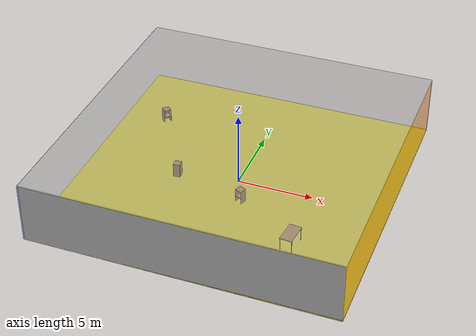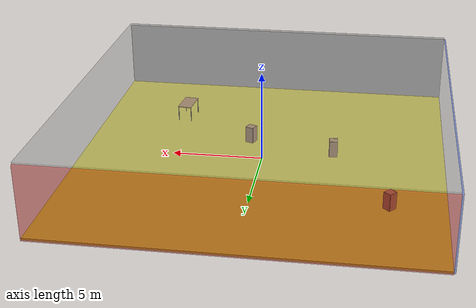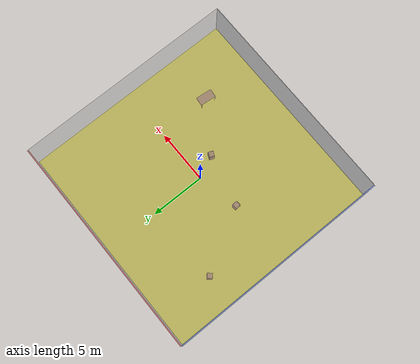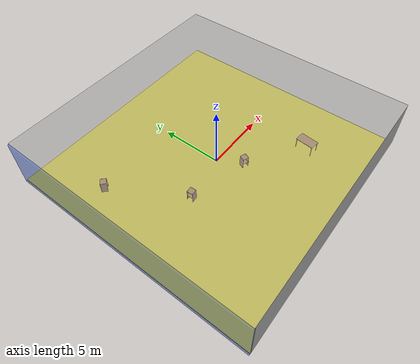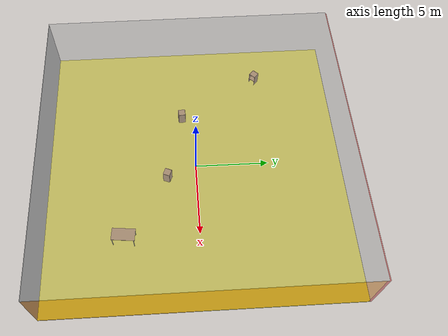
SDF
<sdf version="1.4">
 <world name="default">
  <physics type="ode">
   <max_step_size>0.001</max_step_size>
   <real_time_factor>1</real_time_factor>
   <real_time_update_rate>1000</real_time_update_rate>
   <gravity>0 0 -9.8</gravity>
  </physics>
  <scene><ambient>0.4 0.4 0.4 1</ambient><background>0.7 0.7 0.7 1</background><shadows>1</shadows></scene>
  <model name="Surrounding">
   <static>1</static>
   <link name="Ceiling">
    <collision name="Ceiling_Collision"><geometry><box><size>20 20 0.1</size></box></geometry></collision>
    <visual name="Ceiling_Visual">
     <geometry><box><size>20 20 0.1</size></box></geometry>
     <material>
      <script><uri>file://media/materials/scripts/gazebo.material</uri><name>Gazebo/GreyTransparent</name></script>
     </material>
    </visual>
    <pose>0 0 4.05 0 0 0</pose>
   </link>
   <link name="Wall_South">
    <collision name="Wall_South_Collision">
     <geometry><box><size>20 0 4</size></box></geometry>
     <pose>0 0 2 0 -0 0</pose>
    </collision>
    <visual name="Wall_South_Visual">
     <pose>0 0 2 0 -0 0</pose>
     <geometry><box><size>20 0 4</size></box></geometry>
     <material>
      <script><uri>file://media/materials/scripts/gazebo.material</uri><name>Gazebo/LightOff</name></script>
     </material>
    </visual>
    <velocity_decay><linear>0</linear><angular>0</angular></velocity_decay>
    <pose>0 -10 0 0 -0 0</pose>
   </link>
   <link name="Wall_East">
    <collision name="Wall_21_Collision">
     <geometry><box><size>20 0 4</size></box></geometry>
     <pose>0 0 2 0 -0 0</pose>
    </collision>
    <visual name="Wall_21_Visual">
     <pose>0 0 2 0 -0 0</pose>
     <geometry><box><size>20 0 4</size></box></geometry>
     <material>
      <script>
       <uri>file://media/materials/scripts/gazebo.material</uri>
       <name>Gazebo/OrangeTransparent</name>
      </script>
     </material>
    </visual>
    <velocity_decay><linear>0</linear><angular>0</angular></velocity_decay>
    <pose>10 0 0 0 -0 1.5708</pose>
   </link>
   <link name="Wall_North">
    <collision name="Wall_22_Collision">
     <geometry><box><size>20 0.2 4</size></box></geometry>
     <pose>0 0 2 0 -0 0</pose>
    </collision>
    <visual name="Wall_22_Visual">
     <pose>0 0 2 0 -0 0</pose>
     <geometry><box><size>20 0.2 4</size></box></geometry>
     <material>
      <script><uri>file://media/materials/scripts/gazebo.material</uri><name>Gazebo/RedTransparent</name></script>
     </material>
    </visual>
    <velocity_decay><linear>0</linear><angular>0</angular></velocity_decay>
    <pose>0 10 0 0 -0 0</pose>
   </link>
   <link name="Wall_West">
    <collision name="Wall_23_Collision">
     <geometry><box><size>20 0.2 4</size></box></geometry>
     <pose>0 0 2 0 -0 0</pose>
    </collision>
    <visual name="Wall_23_Visual">
     <pose>0 0 2 0 -0 0</pose>
     <geometry><box><size>20 0.2 4</size></box></geometry>
     <material>
      <script><uri>file://media/materials/scripts/gazebo.material</uri><name>Gazebo/BlueTransparent</name></script>
     </material>
    </visual>
    <velocity_decay><linear>0</linear><angular>0</angular></velocity_decay>
    <pose>-10 0 0 0 0 -1.5708</pose>
   </link>
   <link name="Ground_link">
    <collision name="collision">
     <pose>0 0 .05 0 -0 0</pose>
     <geometry><box><size>20 20 0.1</size></box></geometry>
    </collision>
    <visual name="visual">
     <pose>0 0 .05 0 -0 0</pose>
     <geometry><box><size>20 20 0.1</size></box></geometry>
     <material>
      <script><uri>file://media/materials/scripts/gazebo.material</uri><name>Gazebo/YellowGlow</name></script>
     </material>
    </visual>
   </link>
   <static>1</static>
  </model>
  <spherical_coordinates>
   <surface_model>EARTH_WGS84</surface_model>
   <latitude_deg>0</latitude_deg>
   <longitude_deg>0</longitude_deg>
   <elevation>0</elevation>
   <heading_deg>0</heading_deg>
  </spherical_coordinates>
  <light name="lightball_0" type="diffuse">
   <diffuse>0.8 0.8 0.8 1</diffuse>
   <specular>0.2 0.2 0.2 1</specular>
   <attenuation>
    <range>100</range>
    <constant>0.7</constant>
    <linear>0.01</linear>
    <quadratic>0.001</quadratic>
   </attenuation>
   <direction>-0.5 0.1 -0.9</direction>
   <pose>-2.13473703597 5.06575628512 3.44841105835 0 0 0</pose>
  </light>
  <light name="lightball_1" type="diffuse">
   <diffuse>0.8 0.8 0.8 1</diffuse>
   <specular>0.2 0.2 0.2 1</specular>
   <attenuation>
    <range>100</range>
    <constant>0.7</constant>
    <linear>0.01</linear>
    <quadratic>0.001</quadratic>
   </attenuation>
   <direction>-0.5 0.1 -0.9</direction>
   <pose>2.69755488028 -5.485658984 3.0841025825 0 0 0</pose>
  </light>
  <light name="lightball_2" type="diffuse">
   <diffuse>0.8 0.8 0.8 1</diffuse>
   <specular>0.2 0.2 0.2 1</specular>
   <attenuation>
    <range>100</range>
    <constant>0.7</constant>
    <linear>0.01</linear>
    <quadratic>0.001</quadratic>
   </attenuation>
   <direction>-0.5 0.1 -0.9</direction>
   <pose>0.149168600595 -5.02438732168 3.08669395232 0 0 0</pose>
  </light>
  <light name="lightball_3" type="diffuse">
   <diffuse>0.8 0.8 0.8 1</diffuse>
   <specular>0.2 0.2 0.2 1</specular>
   <attenuation>
    <range>100</range>
    <constant>0.7</constant>
    <linear>0.01</linear>
    <quadratic>0.001</quadratic>
   </attenuation>
   <direction>-0.5 0.1 -0.9</direction>
   <pose>1.43763487281 3.67335784483 2.51966874015 0 0 0</pose>
  </light>
  <light name="lightball_4" type="diffuse">
   <diffuse>0.8 0.8 0.8 1</diffuse>
   <specular>0.2 0.2 0.2 1</specular>
   <attenuation>
    <range>100</range>
    <constant>0.7</constant>
    <linear>0.01</linear>
    <quadratic>0.001</quadratic>
   </attenuation>
   <direction>-0.5 0.1 -0.9</direction>
   <pose>1.40827097535 4.46426538865 3.88200493597 0 0 0</pose>
  </light>
  <light name="lightball_5" type="diffuse">
   <diffuse>0.8 0.8 0.8 1</diffuse>
   <specular>0.2 0.2 0.2 1</specular>
   <attenuation>
    <range>100</range>
    <constant>0.7</constant>
    <linear>0.01</linear>
    <quadratic>0.001</quadratic>
   </attenuation>
   <direction>-0.5 0.1 -0.9</direction>
   <pose>-6.12131768673 -9.69114928977 1.10775658869 0 0 0</pose>
  </light>
  <light name="lightball_6" type="diffuse">
   <diffuse>0.8 0.8 0.8 1</diffuse>
   <specular>0.2 0.2 0.2 1</specular>
   <attenuation>
    <range>100</range>
    <constant>0.7</constant>
    <linear>0.01</linear>
    <quadratic>0.001</quadratic>
   </attenuation>
   <direction>-0.5 0.1 -0.9</direction>
   <pose>0.871573983722 1.41024377183 3.61612755892 0 0 0</pose>
  </light>
  <light name="lightball_7" type="diffuse">
   <diffuse>0.8 0.8 0.8 1</diffuse>
   <specular>0.2 0.2 0.2 1</specular>
   <attenuation>
    <range>100</range>
    <constant>0.7</constant>
    <linear>0.01</linear>
    <quadratic>0.001</quadratic>
   </attenuation>
   <direction>-0.5 0.1 -0.9</direction>
   <pose>5.93599471074 -1.60190903035 2.78935273432 0 0 0</pose>
  </light>
  <light name="lightball_8" type="diffuse">
   <diffuse>0.8 0.8 0.8 1</diffuse>
   <specular>0.2 0.2 0.2 1</specular>
   <attenuation>
    <range>100</range>
    <constant>0.7</constant>
    <linear>0.01</linear>
    <quadratic>0.001</quadratic>
   </attenuation>
   <direction>-0.5 0.1 -0.9</direction>
   <pose>-5.43468447857 -6.92884822684 3.82938275597 0 0 0</pose>
  </light>
  <light name="lightball_9" type="diffuse">
   <diffuse>0.8 0.8 0.8 1</diffuse>
   <specular>0.2 0.2 0.2 1</specular>
   <attenuation>
    <range>100</range>
    <constant>0.7</constant>
    <linear>0.01</linear>
    <quadratic>0.001</quadratic>
   </attenuation>
   <direction>-0.5 0.1 -0.9</direction>
   <pose>5.00366094007 -1.38575787812 3.09482524667 0 0 0</pose>
  </light>
  <light name="lightball_10" type="diffuse">
   <diffuse>0.8 0.8 0.8 1</diffuse>
   <specular>0.2 0.2 0.2 1</specular>
   <attenuation>
    <range>100</range>
    <constant>0.7</constant>
    <linear>0.01</linear>
    <quadratic>0.001</quadratic>
   </attenuation>
   <direction>-0.5 0.1 -0.9</direction>
   <pose>0.883939937645 8.37357225512 3.65561210271 0 0 0</pose>
  </light>
  <light name="lightball_11" type="diffuse">
   <diffuse>0.8 0.8 0.8 1</diffuse>
   <specular>0.2 0.2 0.2 1</specular>
   <attenuation>
    <range>100</range>
    <constant>0.7</constant>
    <linear>0.01</linear>
    <quadratic>0.001</quadratic>
   </attenuation>
   <direction>-0.5 0.1 -0.9</direction>
   <pose>8.92800009445 6.78003250608 3.38100091838 0 0 0</pose>
  </light>
  <include><uri>model://cabinet</uri><pose>-7.08354215474 4.73929011812 0 0 0 2.38474808789</pose></include>
  <include><uri>model://cabinet</uri><pose>-3.89821707663 -0.787202163003 0 0 0 0.0718491258239</pose></include>
  <include><uri>model://cabinet</uri><pose>0.888597299682 -1.96070186347 0 0 0 1.18253641624</pose></include>
  <include><uri>model://table</uri><pose>5.18522094363 -4.86512526249 0 0 0 1.46846123473</pose></include>
 </world>
</sdf>

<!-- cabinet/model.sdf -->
<sdf version="1.5">
  <model name="cabinet">
    <static>true</static>
    <link name="cabinet_bottom_plate">
      <inertial>
        <pose>0 0 -1 0 0 0</pose>
        <inertia>
          <ixx>2.050000</ixx>
          <ixy>0</ixy>
          <ixz>0</ixz>
          <iyy>2.050000</iyy>
          <iyz>0</iyz>
          <izz>2.050000</izz>
        </inertia>
        <mass>25.000000</mass>
      </inertial>
      <collision name="cabinet_bottom_plate_geom">
        <pose>0 0 0.010000 0 0 0</pose>
        <geometry>
          <box>
            <size>0.450000 0.450000 0.020000</size>
          </box>
        </geometry>
      </collision>
      <visual name="cabinet_bottom_plate_geom_visual">
        <pose>0 0 0.010000 0 0 0</pose>
        <geometry>
          <box>
            <size>0.450000 0.450000 0.020000</size>
          </box>
        </geometry>
        <material>
          <script>
            <uri>model://media/materials/scripts/gazebo.material</uri>
            <name>Gazebo/Wood</name>
          </script>
        </material>
      </visual>
      <collision name="cabinet_bottom_plate_geom_cabinet_back_plate">
        <pose>0.235000 0 0.510000 0 0 0</pose>
        <geometry>
          <box>
            <size>0.020000 0.450000 1.020000</size>
          </box>
        </geometry>
      </collision>
      <visual name="cabinet_bottom_plate_geom_cabinet_back_plate_visual">
        <pose>0.235000 0 0.510000 0 0 0</pose>
        <geometry>
          <box>
            <size>0.020000 0.450000 1.020000</size>
          </box>
        </geometry>
        <material>
          <script>
            <uri>model://media/materials/scripts/gazebo.material</uri>
            <name>Gazebo/Wood</name>
          </script>
        </material>
      </visual>
      <collision name="cabinet_bottom_plate_geom_cabinet_left_plate">
        <pose>0 0.235000 0.510000 0 0 0</pose>
        <geometry>
          <box>
            <size>0.450000 0.020000 1.020000</size>
          </box>
        </geometry>
      </collision>
      <visual name="cabinet_bottom_plate_geom_cabinet_left_plate_visual">
        <pose>0 0.235000 0.510000 0 0 0</pose>
        <geometry>
          <box>
            <size>0.450000 0.020000 1.020000</size>
          </box>
        </geometry>
        <material>
          <script>
            <uri>model://media/materials/scripts/gazebo.material</uri>
            <name>Gazebo/Wood</name>
          </script>
        </material>
      </visual>
      <collision name="cabinet_bottom_plate_geom_cabinet_middle_plate">
        <pose>0 0 0.510000 0 0 0</pose>
        <geometry>
          <box>
            <size>0.450000 0.450000 0.020000</size>
          </box>
        </geometry>
      </collision>
      <visual name="cabinet_bottom_plate_geom_cabinet_middle_plate_visual">
        <pose>0 0 0.510000 0 0 0</pose>
        <geometry>
          <box>
            <size>0.450000 0.450000 0.020000</size>
          </box>
        </geometry>
        <material>
          <script>
            <uri>model://media/materials/scripts/gazebo.material</uri>
            <name>Gazebo/Wood</name>
          </script>
        </material>
      </visual>
      <collision name="cabinet_bottom_plate_geom_cabinet_right_plate">
        <pose>0 -0.235000 0.510000 0 0 0</pose>
        <geometry>
          <box>
            <size>0.450000 0.020000 1.020000</size>
          </box>
        </geometry>
      </collision>
      <visual name="cabinet_bottom_plate_geom_cabinet_right_plate_visual">
        <pose>0 -0.235000 0.510000 0 0 0</pose>
        <geometry>
          <box>
            <size>0.450000 0.020000 1.020000</size>
          </box>
        </geometry>
        <material>
          <script>
            <uri>model://media/materials/scripts/gazebo.material</uri>
            <name>Gazebo/Wood</name>
          </script>
        </material>
      </visual>
      <collision name="cabinet_bottom_plate_geom_cabinet_top_plate">
        <pose>0 0 1.010000 0 0 0</pose>
        <geometry>
          <box>
            <size>0.450000 0.450000 0.020000</size>
          </box>
        </geometry>
      </collision>
      <visual name="cabinet_bottom_plate_geom_cabinet_top_plate_visual">
        <pose>0 0 1.010000 0 0 0</pose>
        <geometry>
          <box>
            <size>0.450000 0.450000 0.020000</size>
          </box>
        </geometry>
        <material>
          <script>
            <uri>model://media/materials/scripts/gazebo.material</uri>
            <name>Gazebo/Wood</name>
          </script>
        </material>
      </visual>
    </link>
  </model>
</sdf>

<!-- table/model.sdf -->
<sdf version="1.5">
  <model name="table">
    <static>true</static>
    <link name="link">
      <collision name="surface">
        <pose>0 0 1.0 0 0 0</pose>
        <geometry>
          <box>
            <size>1.5 0.8 0.03</size>
          </box>
        </geometry>
        <surface>
          <friction>
            <ode>
              <mu>0.6</mu>
              <mu2>0.6</mu2>
            </ode>
          </friction>
        </surface>
      </collision>
      <visual name="visual1">
        <pose>0 0 1.0 0 0 0</pose>
        <geometry>
          <box>
            <size>1.5 0.8 0.03</size>
          </box>
        </geometry>
        <material>
          <script>
            <uri>model://media/materials/scripts/gazebo.material</uri>
            <name>Gazebo/Wood</name>
          </script>
        </material>
      </visual>
      <collision name="front_left_leg">
        <pose>0.68 0.38 0.5 0 0 0</pose>
        <geometry>
          <cylinder>
            <radius>0.02</radius>
            <length>1.0</length>
          </cylinder>
        </geometry>
      </collision>
      <visual name="front_left_leg">
        <pose>0.68 0.38 0.5 0 0 0</pose>
        <geometry>
          <cylinder>
            <radius>0.02</radius>
            <length>1.0</length>
          </cylinder>
        </geometry>
        <material>
          <script>
            <uri>model://media/materials/scripts/gazebo.material</uri>
            <name>Gazebo/Grey</name>
          </script>
        </material>
      </visual>
      <collision name="front_right_leg">
        <pose>0.68 -0.38 0.5 0 0 0</pose>
        <geometry>
          <cylinder>
            <radius>0.02</radius>
            <length>1.0</length>
          </cylinder>
        </geometry>
      </collision>
      <visual name="front_right_leg">
        <pose>0.68 -0.38 0.5 0 0 0</pose>
        <geometry>
          <cylinder>
            <radius>0.02</radius>
            <length>1.0</length>
          </cylinder>
        </geometry>
        <material>
          <script>
            <uri>model://media/materials/scripts/gazebo.material</uri>
            <name>Gazebo/Grey</name>
          </script>
        </material>
      </visual>
      <collision name="back_right_leg">
        <pose>-0.68 -0.38 0.5 0 0 0</pose>
        <geometry>
          <cylinder>
            <radius>0.02</radius>
            <length>1.0</length>
          </cylinder>
        </geometry>
      </collision>
      <visual name="back_right_leg">
        <pose>-0.68 -0.38 0.5 0 0 0</pose>
        <geometry>
          <cylinder>
            <radius>0.02</radius>
            <length>1.0</length>
          </cylinder>
        </geometry>
        <material>
          <script>
            <uri>model://media/materials/scripts/gazebo.material</uri>
            <name>Gazebo/Grey</name>
          </script>
        </material>
      </visual>
      <collision name="back_left_leg">
        <pose>-0.68 0.38 0.5 0 0 0</pose>
        <geometry>
          <cylinder>
            <radius>0.02</radius>
            <length>1.0</length>
          </cylinder>
        </geometry>
      </collision>
      <visual name="back_left_leg">
        <pose>-0.68 0.38 0.5 0 0 0</pose>
        <geometry>
          <cylinder>
            <radius>0.02</radius>
            <length>1.0</length>
          </cylinder>
        </geometry>
        <material>
          <script>
            <uri>model://media/materials/scripts/gazebo.material</uri>
            <name>Gazebo/Grey</name>
          </script>
        </material>
      </visual>
    </link>
  </model>
</sdf>
